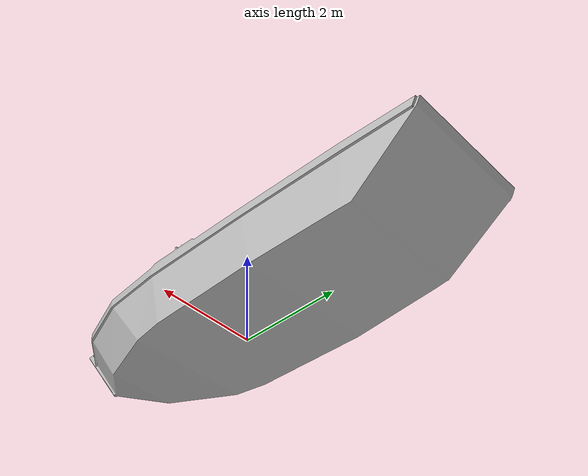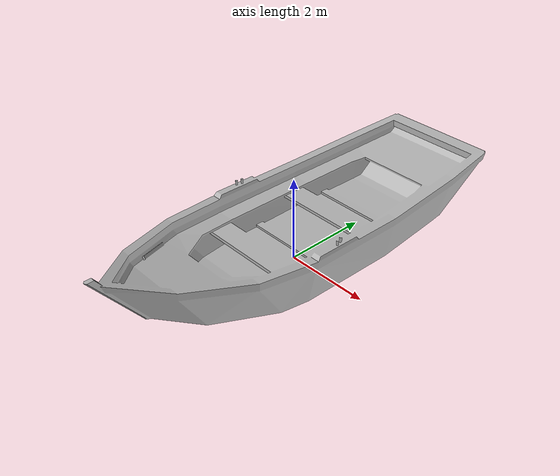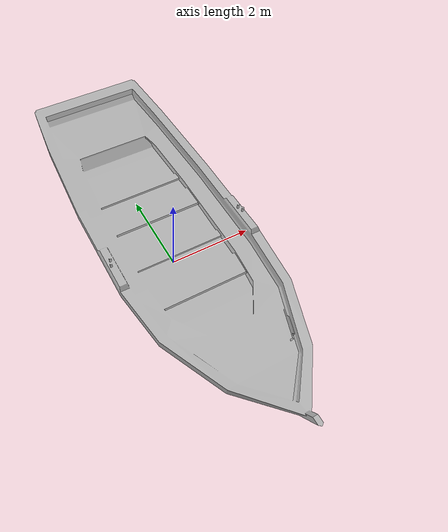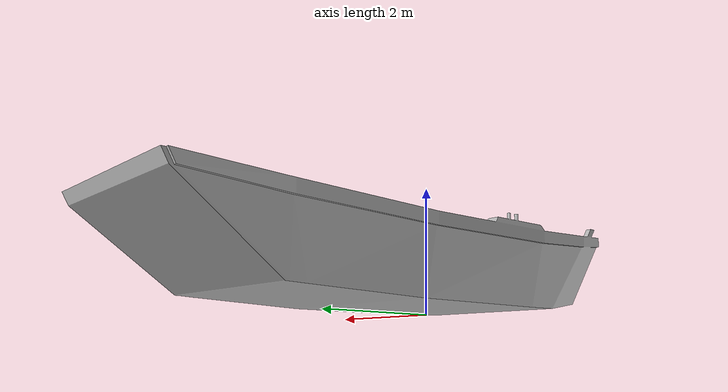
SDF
<?xml version="1.0" ?>
<sdf version="1.5">
  <model name="boat6">
    <static>true</static>
    <link name="link">
      <collision name="boat6_collision">
        <pose>0 0 0.1 0 0 0</pose>
        <geometry>
          <mesh>
	     <uri>model://boat6/meshes/boat6.stl</uri>
          </mesh>
        </geometry>
      </collision>

      <visual name="boat6_visual">
        <cast_shadows>false</cast_shadows>
        <pose>0 0 0.1 0 0 0</pose>
        <geometry>
          <mesh>
	     <uri>model://boat6/meshes/boat6.dae</uri>
          </mesh>
        </geometry>

      </visual>
    </link>
  </model>
</sdf>
